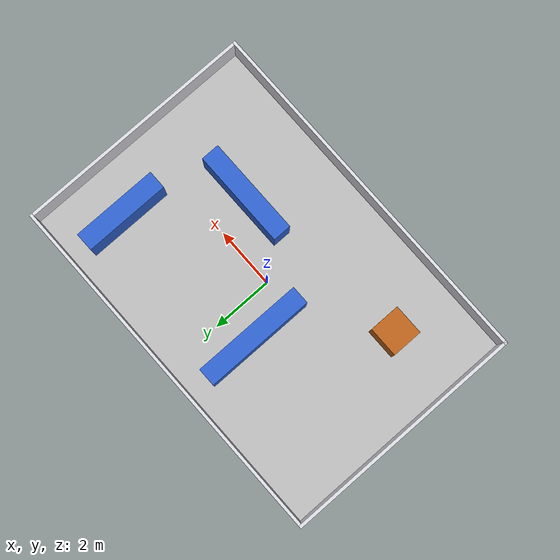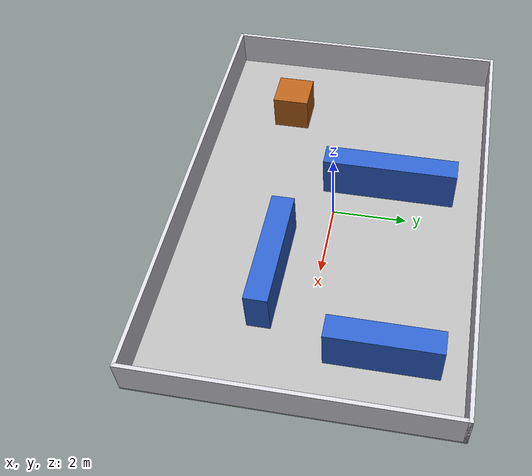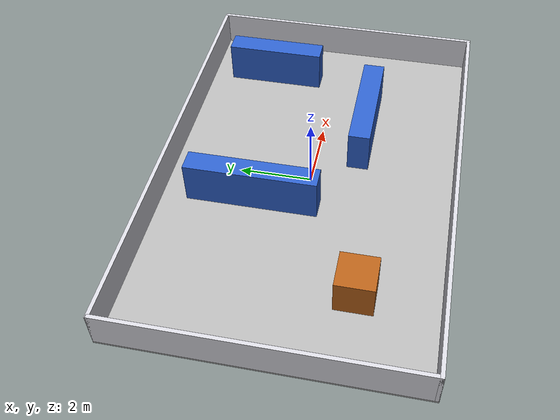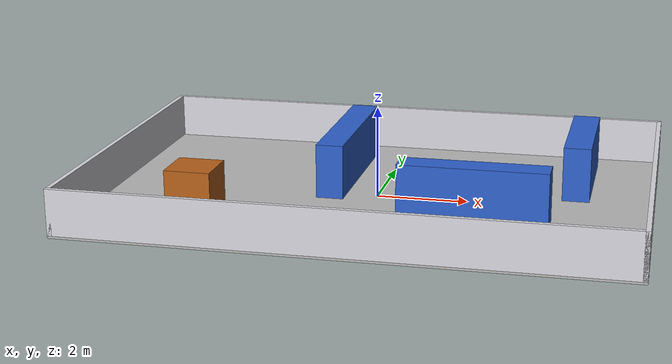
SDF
<?xml version="1.0"?>
<sdf version="1.9">
  <world name="research_warehouse">
    <physics name="research_physics" type="ode">
      <max_step_size>0.003</max_step_size>
      <real_time_factor>1.0</real_time_factor>
    </physics>

    <plugin filename="gz-sim-physics-system" name="gz::sim::systems::Physics"/>
    <plugin filename="gz-sim-user-commands-system" name="gz::sim::systems::UserCommands"/>
    <plugin filename="gz-sim-scene-broadcaster-system" name="gz::sim::systems::SceneBroadcaster"/>
    <plugin filename="gz-sim-imu-system" name="gz::sim::systems::Imu"/>
    <plugin filename="gz-sim-sensors-system" name="gz::sim::systems::Sensors">
      <render_engine>ogre2</render_engine>
    </plugin>

    <scene>
      <ambient>0.8 0.8 0.8 1</ambient>
      <background>0.18 0.22 0.28 1</background>
      <shadows>false</shadows>
      <grid>true</grid>
    </scene>
    <light name="sun" type="directional">
      <pose>0 0 10 0 0 0</pose>
      <diffuse>0.9 0.9 0.9 1</diffuse>
      <specular>0.2 0.2 0.2 1</specular>
      <direction>-0.5 0.2 -1.0</direction>
    </light>

    <model name="research_layout">
      <static>true</static>
      <link name="layout_link">
        <collision name="floor_collision">
          <pose>0 0 -0.025 0 0 0</pose>
          <geometry><box><size>12.0 8.0 0.05</size></box></geometry>
        </collision>
        <visual name="floor_visual">
          <pose>0 0 -0.025 0 0 0</pose>
          <geometry><box><size>12.0 8.0 0.05</size></box></geometry>
          <material><ambient>0.72 0.72 0.72 1</ambient><diffuse>0.72 0.72 0.72 1</diffuse></material>
        </visual>

        <collision name="wall_north"><pose>0 3.95 0.5 0 0 0</pose><geometry><box><size>12 0.10 1.0</size></box></geometry></collision>
        <visual name="wall_north_visual"><pose>0 3.95 0.5 0 0 0</pose><geometry><box><size>12 0.10 1.0</size></box></geometry><material><ambient>0.85 0.85 0.88 1</ambient><diffuse>0.85 0.85 0.88 1</diffuse></material></visual>
        <collision name="wall_south"><pose>0 -3.95 0.5 0 0 0</pose><geometry><box><size>12 0.10 1.0</size></box></geometry></collision>
        <visual name="wall_south_visual"><pose>0 -3.95 0.5 0 0 0</pose><geometry><box><size>12 0.10 1.0</size></box></geometry><material><ambient>0.85 0.85 0.88 1</ambient><diffuse>0.85 0.85 0.88 1</diffuse></material></visual>
        <collision name="wall_west"><pose>-5.95 0 0.5 0 0 0</pose><geometry><box><size>0.10 8 1.0</size></box></geometry></collision>
        <visual name="wall_west_visual"><pose>-5.95 0 0.5 0 0 0</pose><geometry><box><size>0.10 8 1.0</size></box></geometry><material><ambient>0.85 0.85 0.88 1</ambient><diffuse>0.85 0.85 0.88 1</diffuse></material></visual>
        <collision name="wall_east"><pose>5.95 0 0.5 0 0 0</pose><geometry><box><size>0.10 8 1.0</size></box></geometry></collision>
        <visual name="wall_east_visual"><pose>5.95 0 0.5 0 0 0</pose><geometry><box><size>0.10 8 1.0</size></box></geometry><material><ambient>0.85 0.85 0.88 1</ambient><diffuse>0.85 0.85 0.88 1</diffuse></material></visual>

        <collision name="rack_a"><pose>-1.0 1.4 0.6 0 0 0</pose><geometry><box><size>0.60 3.60 1.20</size></box></geometry></collision>
        <visual name="rack_a_visual"><pose>-1.0 1.4 0.6 0 0 0</pose><geometry><box><size>0.60 3.60 1.20</size></box></geometry><material><ambient>0.15 0.30 0.65 1</ambient><diffuse>0.18 0.38 0.80 1</diffuse></material></visual>
        <collision name="rack_b"><pose>2.3 -1.2 0.6 0 0 0</pose><geometry><box><size>3.20 0.60 1.20</size></box></geometry></collision>
        <visual name="rack_b_visual"><pose>2.3 -1.2 0.6 0 0 0</pose><geometry><box><size>3.20 0.60 1.20</size></box></geometry><material><ambient>0.15 0.30 0.65 1</ambient><diffuse>0.18 0.38 0.80 1</diffuse></material></visual>
        <collision name="rack_c"><pose>4.3 1.9 0.6 0 0 0</pose><geometry><box><size>0.60 2.80 1.20</size></box></geometry></collision>
        <visual name="rack_c_visual"><pose>4.3 1.9 0.6 0 0 0</pose><geometry><box><size>0.60 2.80 1.20</size></box></geometry><material><ambient>0.15 0.30 0.65 1</ambient><diffuse>0.18 0.38 0.80 1</diffuse></material></visual>
        <collision name="crate"><pose>-3.6 -1.8 0.5 0 0 0</pose><geometry><box><size>1.00 1.00 1.00</size></box></geometry></collision>
        <visual name="crate_visual"><pose>-3.6 -1.8 0.5 0 0 0</pose><geometry><box><size>1.00 1.00 1.00</size></box></geometry><material><ambient>0.55 0.28 0.08 1</ambient><diffuse>0.72 0.38 0.10 1</diffuse></material></visual>
      </link>
    </model>
  </world>
</sdf>
